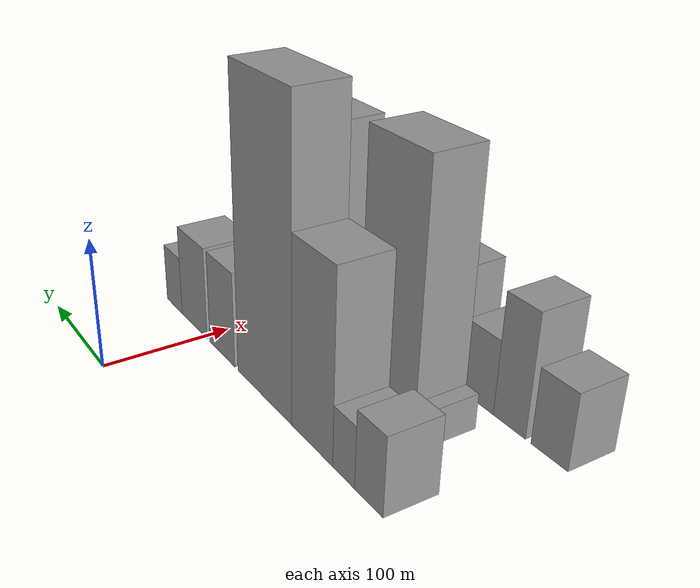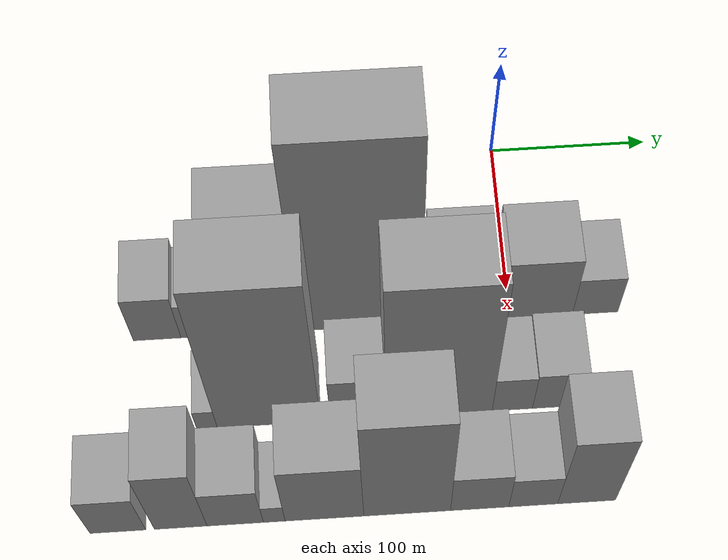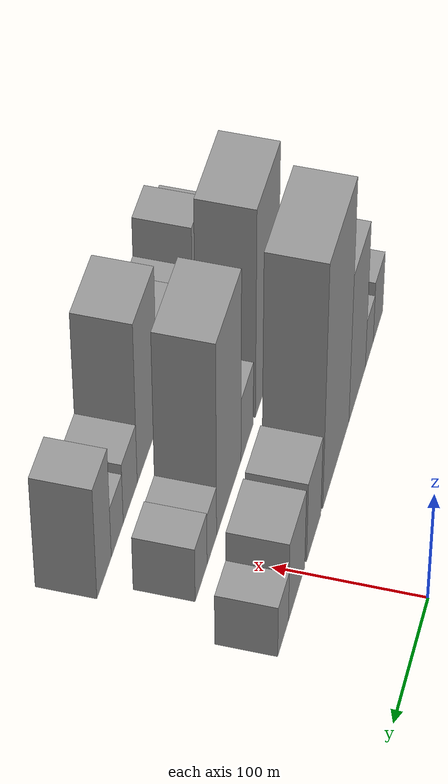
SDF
<sdf version="1.6">
 <world name="default">
  <model name="building_8">
   <static>1</static>
   <pose>100.0000 -217.3423 0 0.000000 0.000000 0.000000</pose>
   <link name="link">
    <pose>0 0 28.50 0 0 0</pose>
    <collision name="collision"><geometry><box><size>40.0000 29.2323 57.0000</size></box></geometry></collision>
    <visual name="visual">
     <cast_shadows>0</cast_shadows>
     <geometry><box><size>40.0000 29.2323 57.0000</size></box></geometry>
     <material>
      <script>
       <uri>model://grey_wall/materials/scripts</uri>
       <uri>model://grey_wall/materials/textures</uri>
       <name>vrc/grey_wall</name>
      </script>
     </material>
    </visual>
   </link>
  </model>
  <model name="building_9">
   <static>1</static>
   <pose>100.0000 -190.7932 0 0.000000 0.000000 0.000000</pose>
   <link name="link">
    <pose>0 0 22.50 0 0 0</pose>
    <collision name="collision"><geometry><box><size>40.0000 23.8659 45.0000</size></box></geometry></collision>
    <visual name="visual">
     <cast_shadows>0</cast_shadows>
     <geometry><box><size>40.0000 23.8659 45.0000</size></box></geometry>
     <material>
      <script>
       <uri>model://grey_wall/materials/scripts</uri>
       <uri>model://grey_wall/materials/textures</uri>
       <name>vrc/grey_wall</name>
      </script>
     </material>
    </visual>
   </link>
  </model>
  <model name="building_10">
   <static>1</static>
   <pose>100.0000 -154.3311 0 0.000000 0.000000 0.000000</pose>
   <link name="link">
    <pose>0 0 69.00 0 0 0</pose>
    <collision name="collision"><geometry><box><size>40.0000 49.0584 138.0000</size></box></geometry></collision>
    <visual name="visual">
     <cast_shadows>0</cast_shadows>
     <geometry><box><size>40.0000 49.0584 138.0000</size></box></geometry>
     <material>
      <script>
       <uri>model://grey_wall/materials/scripts</uri>
       <uri>model://grey_wall/materials/textures</uri>
       <name>vrc/grey_wall</name>
      </script>
     </material>
    </visual>
   </link>
  </model>
  <model name="building_11">
   <static>1</static>
   <pose>100.0000 -92.2065 0 0.000000 0.000000 0.000000</pose>
   <link name="link">
    <pose>0 0 112.50 0 0 0</pose>
    <collision name="collision"><geometry><box><size>40.0000 75.1906 225.0000</size></box></geometry></collision>
    <visual name="visual">
     <cast_shadows>0</cast_shadows>
     <geometry><box><size>40.0000 75.1906 225.0000</size></box></geometry>
     <material>
      <script>
       <uri>model://grey_wall/materials/scripts</uri>
       <uri>model://grey_wall/materials/textures</uri>
       <name>vrc/grey_wall</name>
      </script>
     </material>
    </visual>
   </link>
  </model>
  <model name="building_12">
   <static>1</static>
   <pose>100.0000 -29.7188 0 0.000000 0.000000 0.000000</pose>
   <link name="link">
    <pose>0 0 37.50 0 0 0</pose>
    <collision name="collision"><geometry><box><size>40.0000 39.7849 75.0000</size></box></geometry></collision>
    <visual name="visual">
     <cast_shadows>0</cast_shadows>
     <geometry><box><size>40.0000 39.7849 75.0000</size></box></geometry>
     <material>
      <script>
       <uri>model://grey_wall/materials/scripts</uri>
       <uri>model://grey_wall/materials/textures</uri>
       <name>vrc/grey_wall</name>
      </script>
     </material>
    </visual>
   </link>
  </model>
  <model name="building_13">
   <static>1</static>
   <pose>100.0000 17.2359 0 0.000000 0.000000 0.000000</pose>
   <link name="link">
    <pose>0 0 37.50 0 0 0</pose>
    <collision name="collision"><geometry><box><size>40.0000 44.1244 75.0000</size></box></geometry></collision>
    <visual name="visual">
     <cast_shadows>0</cast_shadows>
     <geometry><box><size>40.0000 44.1244 75.0000</size></box></geometry>
     <material>
      <script>
       <uri>model://grey_wall/materials/scripts</uri>
       <uri>model://grey_wall/materials/textures</uri>
       <name>vrc/grey_wall</name>
      </script>
     </material>
    </visual>
   </link>
  </model>
  <model name="building_14">
   <static>1</static>
   <pose>100.0000 53.4781 0 0.000000 0.000000 0.000000</pose>
   <link name="link">
    <pose>0 0 24.00 0 0 0</pose>
    <collision name="collision"><geometry><box><size>40.0000 28.3602 48.0000</size></box></geometry></collision>
    <visual name="visual">
     <cast_shadows>0</cast_shadows>
     <geometry><box><size>40.0000 28.3602 48.0000</size></box></geometry>
     <material>
      <script>
       <uri>model://grey_wall/materials/scripts</uri>
       <uri>model://grey_wall/materials/textures</uri>
       <name>vrc/grey_wall</name>
      </script>
     </material>
    </visual>
   </link>
  </model>
  <model name="building_34">
   <static>1</static>
   <pose>160.0000 -187.3858 0 0.000000 0.000000 0.000000</pose>
   <link name="link">
    <pose>0 0 13.50 0 0 0</pose>
    <collision name="collision"><geometry><box><size>40.0000 12.2575 27.0000</size></box></geometry></collision>
    <visual name="visual">
     <cast_shadows>0</cast_shadows>
     <geometry><box><size>40.0000 12.2575 27.0000</size></box></geometry>
     <material>
      <script>
       <uri>model://grey_wall/materials/scripts</uri>
       <uri>model://grey_wall/materials/textures</uri>
       <name>vrc/grey_wall</name>
      </script>
     </material>
    </visual>
   </link>
  </model>
  <model name="building_35">
   <static>1</static>
   <pose>160.0000 -150.2522 0 0.000000 0.000000 0.000000</pose>
   <link name="link">
    <pose>0 0 96.00 0 0 0</pose>
    <collision name="collision"><geometry><box><size>40.0000 62.0097 192.0000</size></box></geometry></collision>
    <visual name="visual">
     <cast_shadows>0</cast_shadows>
     <geometry><box><size>40.0000 62.0097 192.0000</size></box></geometry>
     <material>
      <script>
       <uri>model://grey_wall/materials/scripts</uri>
       <uri>model://grey_wall/materials/textures</uri>
       <name>vrc/grey_wall</name>
      </script>
     </material>
    </visual>
   </link>
  </model>
  <model name="building_36">
   <static>1</static>
   <pose>160.0000 -96.7051 0 0.000000 0.000000 0.000000</pose>
   <link name="link">
    <pose>0 0 30.00 0 0 0</pose>
    <collision name="collision"><geometry><box><size>40.0000 33.0845 60.0000</size></box></geometry></collision>
    <visual name="visual">
     <cast_shadows>0</cast_shadows>
     <geometry><box><size>40.0000 33.0845 60.0000</size></box></geometry>
     <material>
      <script>
       <uri>model://grey_wall/materials/scripts</uri>
       <uri>model://grey_wall/materials/textures</uri>
       <name>vrc/grey_wall</name>
      </script>
     </material>
    </visual>
   </link>
  </model>
  <model name="building_37">
   <static>1</static>
   <pose>160.0000 -48.1493 0 0.000000 0.000000 0.000000</pose>
   <link name="link">
    <pose>0 0 90.00 0 0 0</pose>
    <collision name="collision"><geometry><box><size>40.0000 64.0271 180.0000</size></box></geometry></collision>
    <visual name="visual">
     <cast_shadows>0</cast_shadows>
     <geometry><box><size>40.0000 64.0271 180.0000</size></box></geometry>
     <material>
      <script>
       <uri>model://grey_wall/materials/scripts</uri>
       <uri>model://grey_wall/materials/textures</uri>
       <name>vrc/grey_wall</name>
      </script>
     </material>
    </visual>
   </link>
  </model>
  <model name="building_38">
   <static>1</static>
   <pose>160.0000 -3.9642 0 0.000000 0.000000 0.000000</pose>
   <link name="link">
    <pose>0 0 24.00 0 0 0</pose>
    <collision name="collision"><geometry><box><size>40.0000 24.3431 48.0000</size></box></geometry></collision>
    <visual name="visual">
     <cast_shadows>0</cast_shadows>
     <geometry><box><size>40.0000 24.3431 48.0000</size></box></geometry>
     <material>
      <script>
       <uri>model://grey_wall/materials/scripts</uri>
       <uri>model://grey_wall/materials/textures</uri>
       <name>vrc/grey_wall</name>
      </script>
     </material>
    </visual>
   </link>
  </model>
  <model name="building_39">
   <static>1</static>
   <pose>160.0000 23.2347 0 0.000000 0.000000 0.000000</pose>
   <link name="link">
    <pose>0 0 25.50 0 0 0</pose>
    <collision name="collision"><geometry><box><size>40.0000 30.0547 51.0000</size></box></geometry></collision>
    <visual name="visual">
     <cast_shadows>0</cast_shadows>
     <geometry><box><size>40.0000 30.0547 51.0000</size></box></geometry>
     <material>
      <script>
       <uri>model://grey_wall/materials/scripts</uri>
       <uri>model://grey_wall/materials/textures</uri>
       <name>vrc/grey_wall</name>
      </script>
     </material>
    </visual>
   </link>
  </model>
  <model name="building_63">
   <static>1</static>
   <pose>220.0000 -239.7315 0 0.000000 0.000000 0.000000</pose>
   <link name="link">
    <pose>0 0 28.50 0 0 0</pose>
    <collision name="collision"><geometry><box><size>40.0000 32.2962 57.0000</size></box></geometry></collision>
    <visual name="visual">
     <cast_shadows>0</cast_shadows>
     <geometry><box><size>40.0000 32.2962 57.0000</size></box></geometry>
     <material>
      <script>
       <uri>model://grey_wall/materials/scripts</uri>
       <uri>model://grey_wall/materials/textures</uri>
       <name>vrc/grey_wall</name>
      </script>
     </material>
    </visual>
   </link>
  </model>
  <model name="building_64">
   <static>1</static>
   <pose>220.0000 -203.2848 0 0.000000 0.000000 0.000000</pose>
   <link name="link">
    <pose>0 0 46.50 0 0 0</pose>
    <collision name="collision"><geometry><box><size>40.0000 30.5972 93.0000</size></box></geometry></collision>
    <visual name="visual">
     <cast_shadows>0</cast_shadows>
     <geometry><box><size>40.0000 30.5972 93.0000</size></box></geometry>
     <material>
      <script>
       <uri>model://grey_wall/materials/scripts</uri>
       <uri>model://grey_wall/materials/textures</uri>
       <name>vrc/grey_wall</name>
      </script>
     </material>
    </visual>
   </link>
  </model>
  <model name="building_65">
   <static>1</static>
   <pose>220.0000 -171.6425 0 0.000000 0.000000 0.000000</pose>
   <link name="link">
    <pose>0 0 28.50 0 0 0</pose>
    <collision name="collision"><geometry><box><size>40.0000 32.6874 57.0000</size></box></geometry></collision>
    <visual name="visual">
     <cast_shadows>0</cast_shadows>
     <geometry><box><size>40.0000 32.6874 57.0000</size></box></geometry>
     <material>
      <script>
       <uri>model://grey_wall/materials/scripts</uri>
       <uri>model://grey_wall/materials/textures</uri>
       <name>vrc/grey_wall</name>
      </script>
     </material>
    </visual>
   </link>
  </model>
  <model name="building_66">
   <static>1</static>
   <pose>220.0000 -148.9586 0 0.000000 0.000000 0.000000</pose>
   <link name="link">
    <pose>0 0 13.50 0 0 0</pose>
    <collision name="collision"><geometry><box><size>40.0000 12.6804 27.0000</size></box></geometry></collision>
    <visual name="visual">
     <cast_shadows>0</cast_shadows>
     <geometry><box><size>40.0000 12.6804 27.0000</size></box></geometry>
     <material>
      <script>
       <uri>model://grey_wall/materials/scripts</uri>
       <uri>model://grey_wall/materials/textures</uri>
       <name>vrc/grey_wall</name>
      </script>
     </material>
    </visual>
   </link>
  </model>
  <model name="building_67">
   <static>1</static>
   <pose>220.0000 -119.6957 0 0.000000 0.000000 0.000000</pose>
   <link name="link">
    <pose>0 0 43.50 0 0 0</pose>
    <collision name="collision"><geometry><box><size>40.0000 45.8455 87.0000</size></box></geometry></collision>
    <visual name="visual">
     <cast_shadows>0</cast_shadows>
     <geometry><box><size>40.0000 45.8455 87.0000</size></box></geometry>
     <material>
      <script>
       <uri>model://grey_wall/materials/scripts</uri>
       <uri>model://grey_wall/materials/textures</uri>
       <name>vrc/grey_wall</name>
      </script>
     </material>
    </visual>
   </link>
  </model>
  <model name="building_68">
   <static>1</static>
   <pose>220.0000 -71.4196 0 0.000000 0.000000 0.000000</pose>
   <link name="link">
    <pose>0 0 75.00 0 0 0</pose>
    <collision name="collision"><geometry><box><size>40.0000 50.7066 150.0000</size></box></geometry></collision>
    <visual name="visual">
     <cast_shadows>0</cast_shadows>
     <geometry><box><size>40.0000 50.7066 150.0000</size></box></geometry>
     <material>
      <script>
       <uri>model://grey_wall/materials/scripts</uri>
       <uri>model://grey_wall/materials/textures</uri>
       <name>vrc/grey_wall</name>
      </script>
     </material>
    </visual>
   </link>
  </model>
  <model name="building_69">
   <static>1</static>
   <pose>220.0000 -28.9888 0 0.000000 0.000000 0.000000</pose>
   <link name="link">
    <pose>0 0 28.50 0 0 0</pose>
    <collision name="collision"><geometry><box><size>40.0000 34.1549 57.0000</size></box></geometry></collision>
    <visual name="visual">
     <cast_shadows>0</cast_shadows>
     <geometry><box><size>40.0000 34.1549 57.0000</size></box></geometry>
     <material>
      <script>
       <uri>model://grey_wall/materials/scripts</uri>
       <uri>model://grey_wall/materials/textures</uri>
       <name>vrc/grey_wall</name>
      </script>
     </material>
    </visual>
   </link>
  </model>
  <model name="building_70">
   <static>1</static>
   <pose>220.0000 2.4636 0 0.000000 0.000000 0.000000</pose>
   <link name="link">
    <pose>0 0 24.00 0 0 0</pose>
    <collision name="collision"><geometry><box><size>40.0000 28.7500 48.0000</size></box></geometry></collision>
    <visual name="visual">
     <cast_shadows>0</cast_shadows>
     <geometry><box><size>40.0000 28.7500 48.0000</size></box></geometry>
     <material>
      <script>
       <uri>model://grey_wall/materials/scripts</uri>
       <uri>model://grey_wall/materials/textures</uri>
       <name>vrc/grey_wall</name>
      </script>
     </material>
    </visual>
   </link>
  </model>
  <model name="building_71">
   <static>1</static>
   <pose>220.0000 33.8973 0 0.000000 0.000000 0.000000</pose>
   <link name="link">
    <pose>0 0 52.50 0 0 0</pose>
    <collision name="collision"><geometry><box><size>40.0000 34.1172 105.0000</size></box></geometry></collision>
    <visual name="visual">
     <cast_shadows>0</cast_shadows>
     <geometry><box><size>40.0000 34.1172 105.0000</size></box></geometry>
     <material>
      <script>
       <uri>model://grey_wall/materials/scripts</uri>
       <uri>model://grey_wall/materials/textures</uri>
       <name>vrc/grey_wall</name>
      </script>
     </material>
    </visual>
   </link>
  </model>
 </world>
</sdf>
